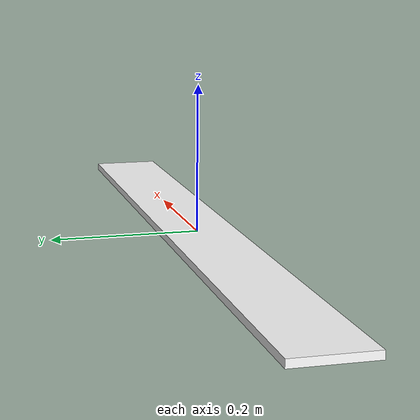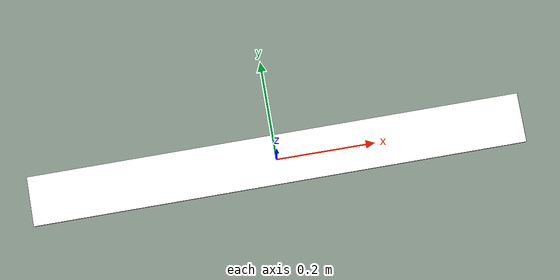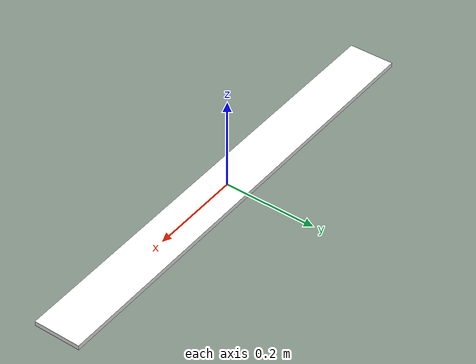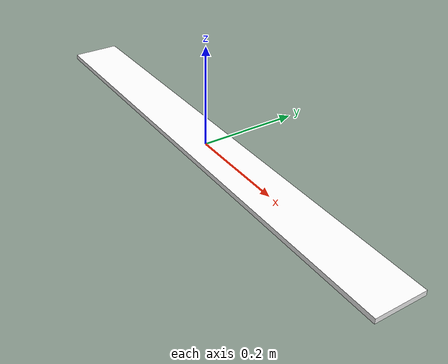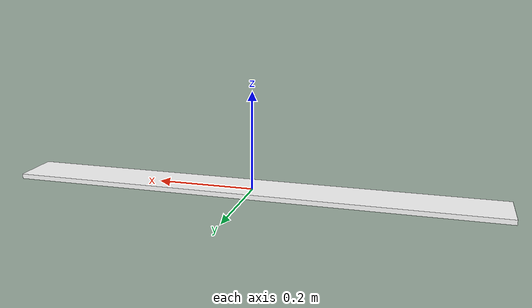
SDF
<?xml version="1.0" ?>
<sdf version="1.6">
  <model name="road_line">
    <static>true</static>  <!-- Line remains stationary -->
    <link name="line_link">
      <!-- Visual for the white line -->
      <visual name="line_visual">
        <geometry>
          <box>
            <size>1 0.1 0.01</size>  <!-- Length, width, height -->
          </box>
        </geometry>
        <material>
          <ambient>1 1 1 1</ambient>   <!-- White color -->
          <diffuse>1 1 1 1</diffuse>   <!-- White diffuse light -->
          <specular>0.5 0.5 0.5 1</specular> <!-- Slight shine -->
        </material>
      </visual>

      <!-- Collision geometry (optional) -->
      <collision name="line_collision">
        <geometry>
          <box>
            <size>1 0.1 0.01</size>
          </box>
        </geometry>
      </collision>
    </link>
  </model>
</sdf>
